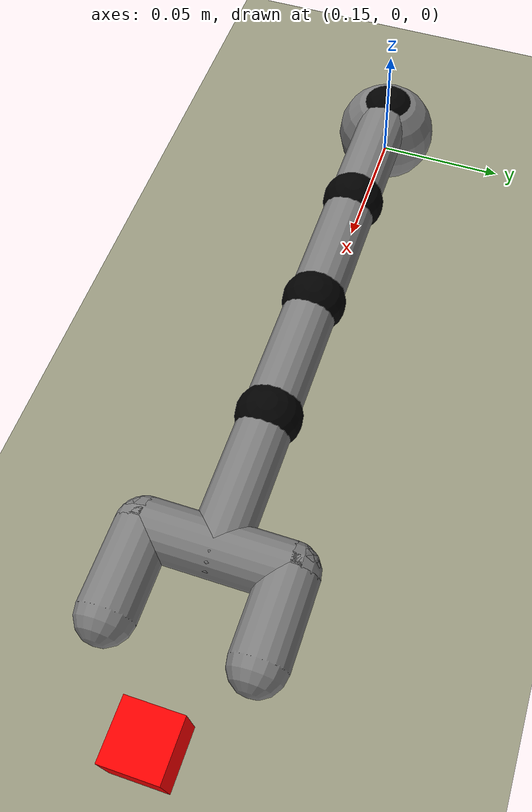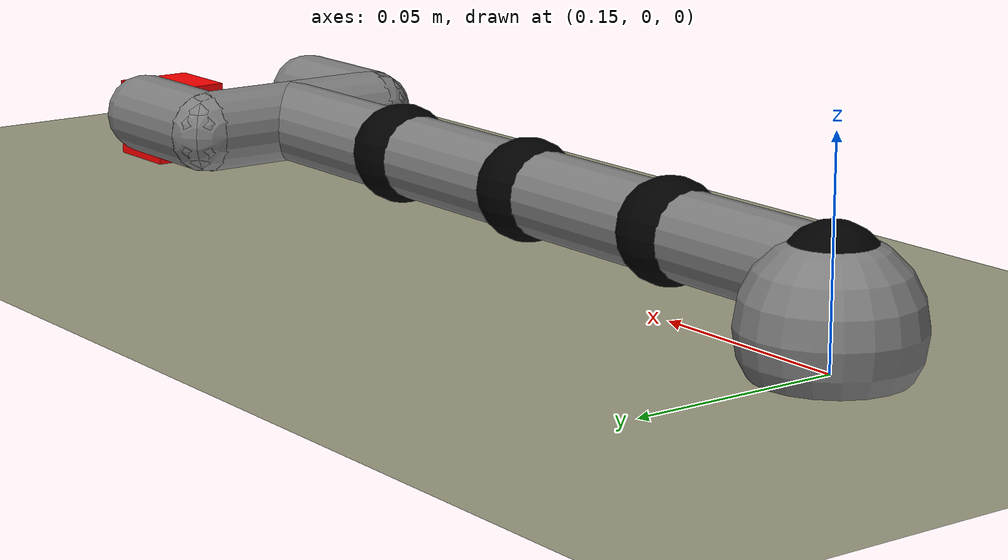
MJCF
<mujoco model="four_link_planar_arm">
	<compiler 	inertiafromgeom="true"
				angle="radian"/>

	<size 	nuser_jnt="1"
			nuser_geom="1"/>

	<option	timestep="0.001"
			gravity="0 0 0"
			viscosity="0"
			iterations="20"/>

	<asset>
		<material name="MatGnd" specular=".3" shininess=".3" reflectance="0.3" rgba=".5 .55 .5 1"/>
	</asset>

	<default>
		<joint limited="true" damping="1" stiffness="0" armature=".1" user="0"/>
		<geom solref="0.008 1" solimp="0.95 0.95 0.01" margin="0.001" user="0"/>
		<motor ctrllimited="true" ctrlrange="-1 1"/>
		<position ctrllimited="true"/>

		<default class='0'>
			<geom friction="1 0.005 0.001" rgba=".75 .6 .5 1" contype="1" conaffinity="0"/>
		</default>

		<default class='1'>
			<geom friction="1 0.005 0.001" rgba=".7 .6 .55 1" contype="1" conaffinity="0"/>
		</default>

		<default class='arm'>
			<joint damping="5"/>
		</default>
	</default>

<worldbody>
		<light directional="true" cutoff="40" exponent="10" diffuse=".4 .4 .4" specular=".7 .7 .7" pos="0 0 1.5" dir="0 0 -1"/>
		<geom name="tableTop" material="MatGnd" type="plane" pos="0.15 0 0" size="0.4 0.6 0.5" rgba=".6 .6 .5 1" contype="1" conaffinity="1"/>

		<!--  ================= ARM ================= /-->
		<body name="base" pos="0.15 0 0.01">
			<geom class="arm" name="fixture" type="sphere" size="0.012" rgba="0. 0. 0. 1" pos="0. 0. 0.01" />
			<joint class='arm' name="rBL1Jnt" type="hinge" pos="0 0 0" axis="0 0 1" range="-3 3" user="001"/>
			<geom class="arm" name="base" type="sphere" size="0.02" rgba="0.5 0.5 0.5 1" pos="0. 0. 0." />

			<body name="link1" pos="0.0 0. 0.01">
				<geom class="arm" type="capsule" fromto="0 0 0 0.05 0 0" rgba="0.5 0.5 0.5 1" size="0.01"/>
				<joint class='arm' name="rL1L2Jnt" type="hinge" pos="0 0 0" axis="0 0 1" range="-3 3" user="001"/>

				<body name="link2" pos="0.05 0. 0.">
					<geom class="arm" name="jnt2" type="sphere" size="0.012" rgba="0. 0. 0. 1" pos="0. 0. 0.0" />
					<geom class="arm" type="capsule" fromto="0 0 0 0.05 0 0" rgba="0.5 0.5 0.5 1" size="0.01"/>
					<joint class='arm' name="rL2L3Jnt" type="hinge" pos="0 0 0" axis="0 0 1" range="-3 3" user="001"/>

					<body name="link3" pos="0.05 0. 0.">
						<geom class="arm" name="jnt3" type="sphere" size="0.012" rgba="0. 0. 0. 1" pos="0. 0. 0.0" />
						<geom class="arm" type="capsule" fromto="0 0 0 0.05 0 0" rgba="0.5 0.5 0.5 1" size="0.01"/>
						<joint class='arm' name="rL3L4Jnt" type="hinge" pos="0 0 0" axis="0 0 1" range="-3 3" user="001"/>

						<body name="link4" pos="0.05 0. 0.">
							<geom class="arm" name="jnt4" type="sphere" size="0.012" rgba="0. 0. 0. 1" pos="0. 0. 0.0" />
							<geom class="arm" type="capsule" fromto="0 0 0 0.05 0 0" rgba="0.5 0.5 0.5 1" size="0.01"/>

							<body name="end_effector" pos="0.05 0. 0.">
								<site type="sphere" name="ee_site" size="0.003" pos="0. 0 0" rgba="0.5 0.6 0.8 0.3" />
								<geom class="arm" type="capsule" fromto="0.0 -0.025 0  0.0   0.025 0" rgba="0.5 0.5 0.5 1"  size="0.01"/>
								<geom class="arm" type="capsule" fromto="0.0 -0.025 0  0.03 -0.025 0" rgba="0.5 0.5 0.5 1"  size="0.01"/>
								<geom class="arm" type="capsule" fromto="0.0  0.025 0  0.03  0.025 0" rgba="0.5 0.5 0.5 1"  size="0.01"/>
							</body>
						</body>
					</body>
				</body>
			</body>
		</body>

		<!--  ================= OBJECTS ================= /-->
         <body name="red_object" pos="0.41 0. 0.011">
         	<site name="target" pos="0 0 0" size="0.01" />
            <geom type="box" name="r_obj" size="0.01 0.01 0.01" pos="0. 0. 0." rgba="1 0. 0. 1" user="1" contype="1" conaffinity="1"/>
        </body>

	</worldbody>

	<actuator>

		<!--  ================= Position actuators ================= /-->

		<!--  ================= Torque actuators ================= /-->
		<motor ctrllimited="true" name='As_jnt1' ctrlrange="-1.0 1.0" gear="200.0" joint="rBL1Jnt"/>
		<motor ctrllimited="true" name='As_jnt2' ctrlrange="-1.0 1.0" gear="200.0" joint="rL1L2Jnt"/>
		<motor ctrllimited="true" name='As_jnt3' ctrlrange="-1.0 1.0" gear="200.0" joint="rL2L3Jnt"/>
		<motor ctrllimited="true" name='As_jnt4' ctrlrange="-1.0 1.0" gear="200.0" joint="rL3L4Jnt"/>
	</actuator>

</mujoco>
